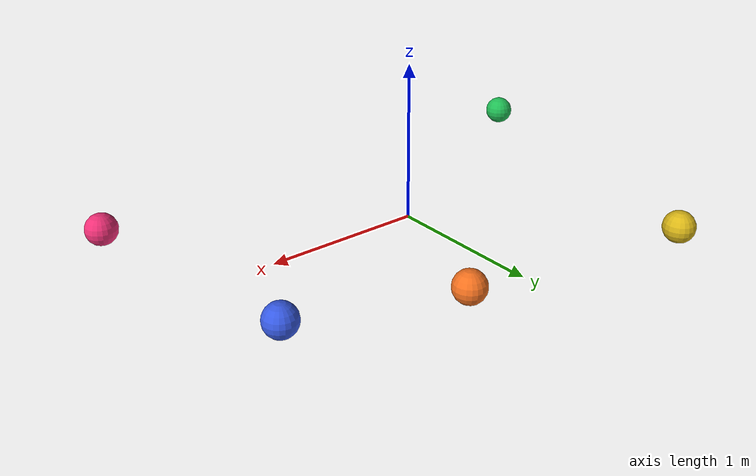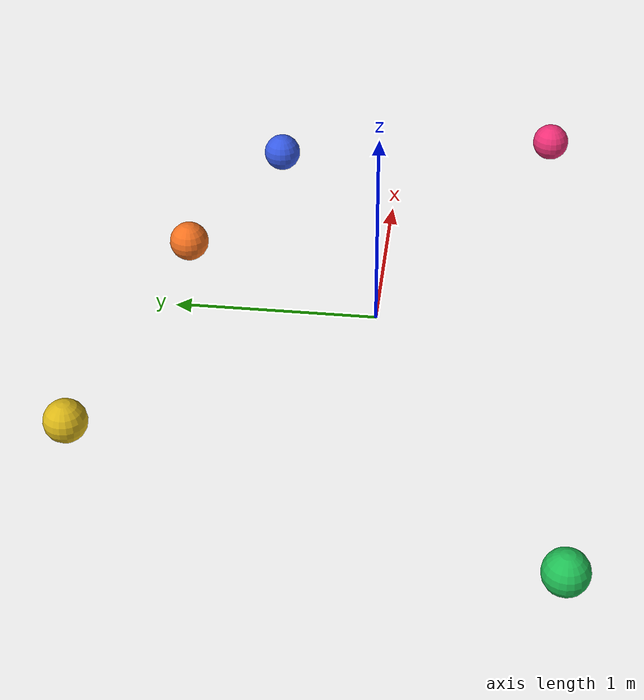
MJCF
<?xml version='1.0' encoding='utf-8'?>
<mujoco model="random_spheres">
  <option timestep="0.01" gravity="0 0 -9.81" />
  <worldbody>
    <geom name="floor" type="plane" size="50 50 0.1" pos="0 0 100" rgba="0.8 0.8 0.8 1" />

    <body name="sphere_0" pos="1.656 -0.852 0.1">
      <geom type="sphere" size="0.1" rgba="0.93 0.18 0.46 1" />
      <freejoint />
    </body>

    <body name="sphere_1" pos="-1.700 -0.898 0.1">
      <geom type="sphere" size="0.1" rgba="0.12 0.74 0.33 1" />
      <freejoint />
    </body>

    <body name="sphere_2" pos="-1.035 1.277 0.1">
      <geom type="sphere" size="0.1" rgba="0.85 0.71 0.09 1" />
      <freejoint />
    </body>

    <body name="sphere_3" pos="1.372 0.660 0.1">
      <geom type="sphere" size="0.1" rgba="0.21 0.35 0.89 1" />
      <freejoint />
    </body>

    <body name="sphere_4" pos="0.422 1.010 0.1">
      <geom type="sphere" size="0.1" rgba="0.95 0.44 0.12 1" />
      <freejoint />
    </body>
  </worldbody>
</mujoco>
